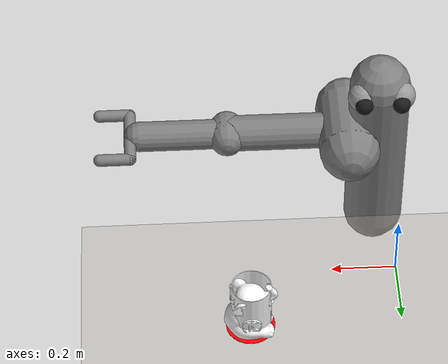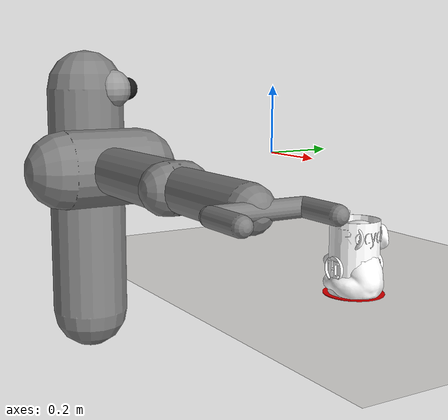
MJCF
<mujoco model="arm3d">
	<compiler angle="radian" inertiafromgeom="true" coordinate="local"/>
	<option timestep="0.01" gravity="0 0 0" iterations="20" integrator="Euler"/>
	<default >
		<joint damping="1" limited="true" armature="0.04"/>
		<geom friction="0.8 0.1 0.1" density="300" contype="0" condim="1" conaffinity="0" margin="0.002"/>
	</default>
	<worldbody >
		<light castshadow="false" dir="0 0 -1" diffuse=".5 .5 .5" pos="0 0 3"/>
		<geom size="1 1 0.1" contype="1" type="plane" name="table" material="table" conaffinity="1" pos="0 0.5 -0.325"/>
		<body name="r_shoulder_pan_link" pos="0 -0.6 0">
			<geom type="sphere" name="e1" rgba="0.6 0.6 0.6 1" size="0.05" pos="-0.06 0.05 0.2"/>
			<geom type="sphere" name="e2" rgba="0.6 0.6 0.6 1" size="0.05" pos=" 0.06 0.05 0.2"/>
			<geom type="sphere" name="e1p" rgba="0.1 0.1 0.1 1" size="0.03" pos="-0.06 0.09 0.2"/>
			<geom type="sphere" name="e2p" rgba="0.1 0.1 0.1 1" size="0.03" pos=" 0.06 0.09 0.2"/>
			<geom type="capsule" name="sp" size="0.1" fromto="0 0 -0.4 0 0 0.2"/>
			<joint axis="0 0 1" name="r_shoulder_pan_joint" type="hinge" damping="1.0" range="-2.2854 1.714602" pos="0 0 0"/>
			<body name="r_shoulder_lift_link" pos="0.1 0 0">
				<geom type="capsule" name="sl" size="0.1" fromto="0 -0.1 0 0 0.1 0"/>
				<joint axis="0 1 0" name="r_shoulder_lift_joint" type="hinge" damping="1.0" range="-0.5236 1.3963" pos="0 0 0"/>
				<body name="r_upper_arm_roll_link" pos="0 0 0">
					<geom type="capsule" name="uar" size="0.02" fromto="-0.1 0 0 0.1 0 0"/>
					<joint axis="1 0 0" name="r_upper_arm_roll_joint" type="hinge" damping="0.1" range="-1.5 1.7" pos="0 0 0"/>
					<body name="r_upper_arm_link" pos="0 0 0">
						<geom type="capsule" name="ua" size="0.06" fromto="0 0 0 0.4 0 0"/>
						<body name="r_elbow_flex_link" pos="0.4 0 0">
							<geom type="capsule" name="ef" size="0.06" fromto="0 -0.02 0 0.0 0.02 0"/>
							<joint axis="0 1 0" name="r_elbow_flex_joint" type="hinge" damping="0.1" range="-2.3213 0" pos="0 0 0"/>
							<body name="r_forearm_roll_link" pos="0 0 0">
								<geom type="capsule" name="fr" size="0.02" fromto="-0.1 0 0 0.1 0 0"/>
								<joint axis="1 0 0" name="r_forearm_roll_joint" type="hinge" damping=".1" limited="true" range="-1.5 1.5" pos="0 0 0"/>
								<body name="r_forearm_link" pos="0 0 0">
									<geom type="capsule" name="fa" size="0.05" fromto="0 0 0 0.291 0 0"/>
									<body name="r_wrist_flex_link" pos="0.321 0 0">
										<geom type="capsule" name="wf" size="0.01" fromto="0 -0.02 0 0 0.02 0"/>
										<joint axis="0 1 0" name="r_wrist_flex_joint" type="hinge" damping=".1" range="-1.094 0" pos="0 0 0"/>
										<body name="r_wrist_roll_link" pos="0 0 0">
											<joint axis="1 0 0" name="r_wrist_roll_joint" type="hinge" damping="0.1" limited="true" range="-1.5 1.5" pos="0 0 0"/>
											<body name="tips_arm" pos="0 0 0">
												<geom type="sphere" name="tip_arml" size="0.01" pos="0.1 -0.1 0."/>
												<geom type="sphere" name="tip_armr" size="0.01" pos="0.1 0.1 0."/>
											</body>
											<geom type="capsule" conaffinity="1" size="0.02" fromto="0 -0.1 0. 0.0 +0.1 0" contype="1"/>
											<geom type="capsule" conaffinity="1" size="0.02" fromto="0 -0.1 0. 0.1 -0.1 0" contype="1"/>
											<geom type="capsule" conaffinity="1" size="0.02" fromto="0 +0.1 0. 0.1 +0.1 0" contype="1"/>
										</body>
									</body>
								</body>
							</body>
						</body>
					</body>
				</body>
			</body>
		</body>
		<body name="distractor" pos="0.436266009489 -0.0538343804605 -0.325121339695">
			<light castshadow="false"/>
			<geom mesh="distractor_mesh" conaffinity="0" contype="1" density="283.380131318" type="mesh" material="distractor" rgba="1 1 1 1"/>
			<joint axis="0 1 0" name="distractor_slidey" type="slide" damping="1.9398293015738108" range="-10.3213 10.3" pos="0 0 0"/>
			<joint axis="1 0 0" name="distractor_slidex" type="slide" damping="1.9398293015738108" range="-10.3213 10.3" pos="0 0 0"/>
		</body>
		<body name="object" pos="0.484452568057 -0.046373127714 -0.324">
			<light castshadow="false"/>
			<geom mesh="object_mesh" conaffinity="0" contype="1" density="947.80236793" type="mesh" material="object" rgba="1 1 1 1"/>
			<joint axis="0 1 0" name="obj_slidey" type="slide" damping="2.0558580425559914" range="-10.3213 10.3" pos="0 0 0"/>
			<joint axis="1 0 0" name="obj_slidex" type="slide" damping="2.0558580425559914" range="-10.3213 10.3" pos="0 0 0"/>
		</body>
		<body name="goal" pos="0.45 -0.05 -0.323">
			<geom rgba="1 0 0 1" size="0.08 0.001 0.1" density="0.00001" contype="0" type="cylinder" conaffinity="0"/>
			<joint axis="0 1 0" name="goal_slidey" type="slide" damping="0.5" range="-10.3213 10.3" pos="0 0 0"/>
			<joint axis="1 0 0" name="goal_slidex" type="slide" damping="0.5" range="-10.3213 10.3" pos="0 0 0"/>
		</body>
	</worldbody>
	<asset >
		<texture type="2d" name="table" file="textures/table_textures/wpic_002.png"/>
		<material name="table" shininess="0.3" rgba="0.9 0.9 0.9 1" texture="table" specular="1"/>
		<mesh name="object_mesh" file="mujoco_models/test_objs/Recycle_Soda_Can.stl" scale="0.00181343614302 0.00181343614302 0.00181343614302"/>
		<mesh name="distractor_mesh" file="mujoco_models/test_objs/Elephant.stl" scale="0.000655859536212 0.000655859536212 0.000655859536212"/>
		<texture name="distractor" file="textures/obj_textures/frilly_0025.png"/>
		<material name="distractor" shininess="0.3" rgba="0.9 0.9 0.9 1" texture="distractor" specular="1"/>
		<texture name="object" file="textures/obj_textures/bumpy_0014.png"/>
		<material name="object" shininess="0.3" rgba="0.9 0.9 0.9 1" texture="object" specular="1"/>
	</asset>
	<actuator >
		<motor ctrlrange="-2.0 2.0" joint="r_shoulder_pan_joint" ctrllimited="true"/>
		<motor ctrlrange="-2.0 2.0" joint="r_shoulder_lift_joint" ctrllimited="true"/>
		<motor ctrlrange="-2.0 2.0" joint="r_upper_arm_roll_joint" ctrllimited="true"/>
		<motor ctrlrange="-2.0 2.0" joint="r_elbow_flex_joint" ctrllimited="true"/>
		<motor ctrlrange="-2.0 2.0" joint="r_forearm_roll_joint" ctrllimited="true"/>
		<motor ctrlrange="-2.0 2.0" joint="r_wrist_flex_joint" ctrllimited="true"/>
		<motor ctrlrange="-2.0 2.0" joint="r_wrist_roll_joint" ctrllimited="true"/>
	</actuator>
</mujoco>
